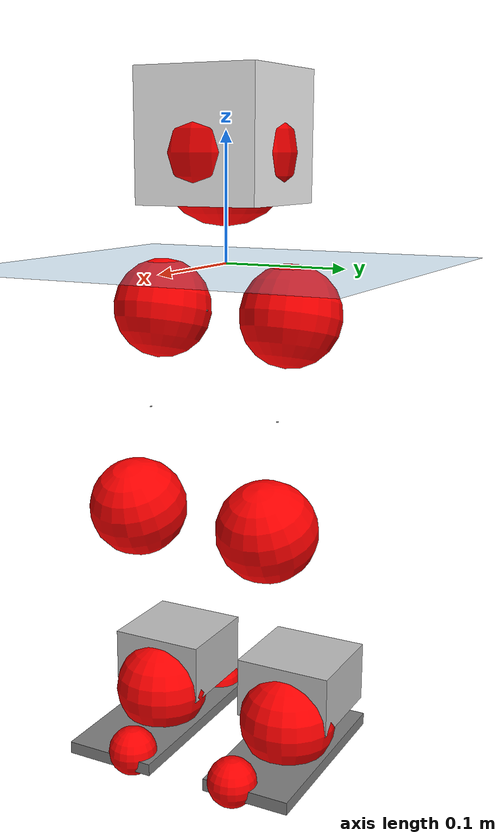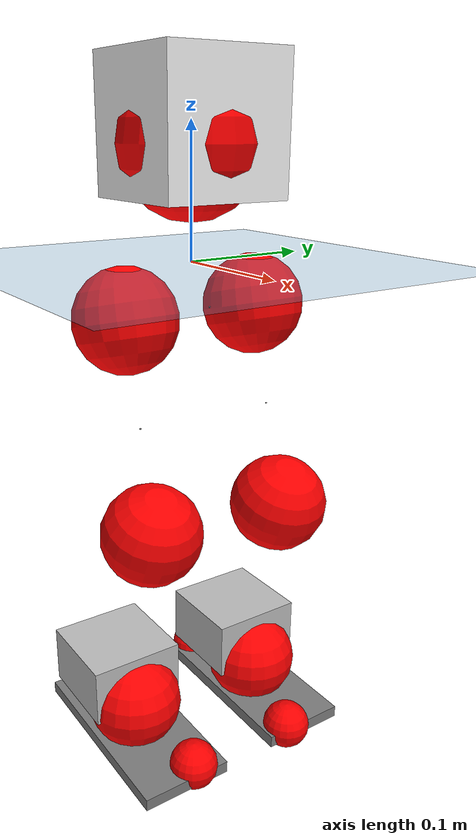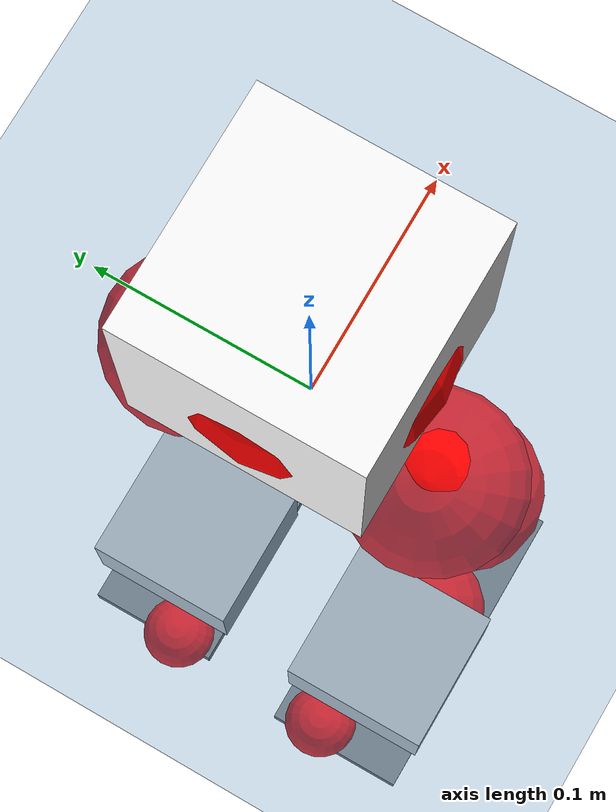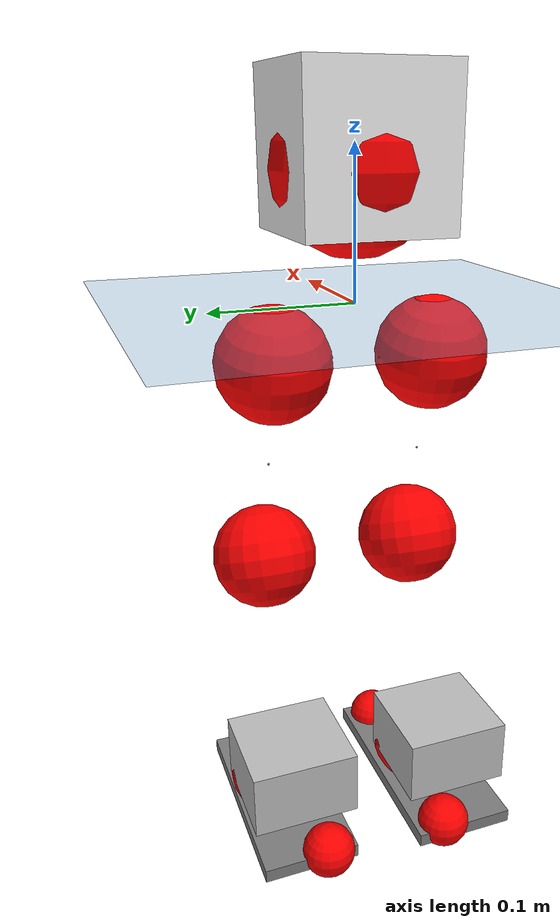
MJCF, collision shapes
<mujoco model="pi_12dof_release_v1">
  <compiler angle="radian" assetdir="assets" balanceinertia="true" inertiafromgeom="false"/>

  <option timestep="0.005" density="1.2" viscosity="2e-05"/>

  <size nkey="1"/>

  <visual>
    <quality shadowsize="8192"/>
    <map shadowclip="0.5"/>
  </visual>

  <default>
    <default class="/">
      <joint armature="0.01" damping="0.01" frictionloss="0.01"/>
      <geom contype="0" conaffinity="0" group="1" solref="-1000 -80"/>
      <site size="0.01 0.005 0.005" group="5"/>
      <general forcelimited="true" biastype="affine" gainprm="20" biasprm="0 -20 -0.5"/>
      <default class="foot">
        <geom size="0.0845 0.036 0.005" type="box" condim="6" group="4" priority="1" friction="0.9 0.2 0.2" solimp="0.015 1 0.005"/>
      </default>
      <default class="reward_collision_sphere">
        <geom group="5" rgba="1 0 0 1"/>
      </default>
    </default>
  </default>

  <asset>
    <texture type="skybox" colorspace="auto" name="//unnamed_texture_0" builtin="gradient" rgb1="0.95 0.95 0.95" rgb2="0.95 0.95 0.95" width="100" height="600"/>
    <texture type="2d" colorspace="auto" name="texplane" builtin="checker" rgb1="0.345 0.575 0.748" rgb2="0.345 0.575 0.748" markrgb="1 1 1" width="512" height="512"/>
    <material name="MatPlane" class="/" texture="texplane" texuniform="true" texrepeat="2 2" specular="0.9"/>
    <mesh name="baselink_1" class="/" file="baselink_1.STL"/>
    <mesh name="r_hip_pitch_link" class="/" file="r_hip_pitch_link.STL"/>
    <mesh name="r_hip_roll_link" class="/" file="r_hip_roll_link.STL"/>
    <mesh name="r_thigh_link" class="/" file="r_thigh_link.STL"/>
    <mesh name="r_calf_link" class="/" file="r_calf_link.STL"/>
    <mesh name="r_ankle_pitch_link" class="/" file="r_ankle_pitch_link.STL"/>
    <mesh name="r_ankle_roll_link" class="/" file="r_ankle_roll_link.STL"/>
    <mesh name="l_hip_pitch_link" class="/" file="l_hip_pitch_link.STL"/>
    <mesh name="l_hip_roll_link" class="/" file="l_hip_roll_link.STL"/>
    <mesh name="l_thigh_link" class="/" file="l_thigh_link.STL"/>
    <mesh name="l_calf_link" class="/" file="l_calf_link.STL"/>
    <mesh name="l_ankle_pitch_link" class="/" file="l_ankle_pitch_link.STL"/>
    <mesh name="l_ankle_roll_link" class="/" file="l_ankle_roll_link.STL"/>
  </asset>

  <worldbody>
    <geom name="floor" class="/" size="100 100 0.125" type="plane" group="0" material="MatPlane"/>
    <light name="toplight_shadow" class="/" pos="0 0 5" dir="0.0990148 0.0990148 -0.990148" type="directional" ambient="0.04 0.04 0.04" diffuse="0.55 0.55 0.55" specular="0.12 0.12 0.12"/>
    <light name="toplight_fill" class="/" pos="0 0 5" dir="0.0990148 0.0990148 -0.990148" type="directional" castshadow="false" ambient="0.04 0.04 0.04" diffuse="0.3 0.3 0.3" specular="0.08 0.08 0.08"/>
    <body name="trunk" pos="0.000317009 -0.000417562 0.00100175" quat="1 -1.97628e-05 1.28574e-05 0.00022359">
      <inertial pos="0.0028579 -0.00285216 0.0484783" quat="0.696069 0.00884178 0.0101743 0.717848" mass="2.13049" diaginertia="0.0149048 0.00173 0.00936886"/>
      <joint name="//unnamed_joint_0" type="free"/>
      <geom name="//unnamed_geom_1" class="/" type="mesh" density="0" rgba="1 1 1 1" mesh="baselink_1"/>
      <geom name="//unnamed_geom_2" class="/" size="0.0500479 0.0500479 0.0500479" pos="0 0 0.0943271" type="box" rgba="1 1 1 1"/>
      <geom name="//unnamed_geom_3" class="reward_collision_sphere" size="0.0550527" pos="0 0 0.0825362"/>
      <site name="imu" class="/" pos="-0.00253994 0.00215512 0.00212012" size="0.0100096"/>
      <camera name="track" class="/" pos="0 -1.44615 0" quat="0.707107 0.707107 0 0" mode="trackcom"/>
      <camera name="ego_camera" class="/" pos="0.0825532 0 0.212236" quat="-0.5 -0.5 0.5 0.5"/>
      <body name="r_hip_pitch_link" pos="-0.00139053 -0.0171557 -0.0390675" quat="0.99225 -3.55079e-05 -0.124257 -4.03796e-05">
        <inertial pos="0.00137136 -0.0424268 0.000856945" quat="-0.0281383 0.705118 -0.036884 0.707571" mass="0.368422" diaginertia="0.000173306 1.9454e-05 0.000187501"/>
        <joint name="r_hip_pitch_joint" class="/" pos="0 0 0" axis="-0.00592795 -0.999975 0.003803" range="-1.74392 1.24374" armature="0.00977321" damping="0.0239459" frictionloss="0.0110816"/>
        <geom name="//unnamed_geom_4" class="/" type="mesh" density="0" rgba="0.75294 0.75294 0.75294 1" mesh="r_hip_pitch_link"/>
        <geom name="//unnamed_geom_5" class="/" size="0.000500479 0.000500479 0.000500479" type="box" rgba="0.75294 0.75294 0.75294 1"/>
        <body name="r_hip_roll_link" pos="0.0013329 -0.0400588 -0.000439111" quat="0.999999 -6.82886e-05 0.000180158 0.00115639">
          <inertial pos="-0.00135127 0.00194205 -0.0707205" quat="0.708964 -0.0792931 -0.080036 0.696188" mass="0.386091" diaginertia="0.00052568 5.63656e-05 0.000291234"/>
          <joint name="r_hip_roll_joint" class="/" pos="0 0 0" axis="-0.999997 -0.00179555 -0.00173003" range="-0.11648 0.504516" armature="0.0106441" damping="0.0161761" frictionloss="0.00974839"/>
          <geom name="//unnamed_geom_6" class="/" type="mesh" density="0" rgba="0.75294 0.75294 0.75294 1" mesh="r_hip_roll_link"/>
          <geom name="//unnamed_geom_7" class="/" size="0.000500479 0.000500479 0.000500479" type="box" rgba="0.75294 0.75294 0.75294 1"/>
          <geom name="//unnamed_geom_8" class="reward_collision_sphere" size="0.0400383"/>
          <body name="r_thigh_link" pos="-0.000185372 -0.000627263 -0.0805868" quat="1 -9.48721e-05 0.000146802 2.58493e-05">
            <inertial pos="-0.00133586 0.000293028 -0.0574286" quat="0.738916 0.673782 -0.000738199 0.00448797" mass="0.111333" diaginertia="0.000201118 1.91602e-05 0.000130878"/>
            <joint name="r_thigh_joint" class="/" pos="0 0 0" axis="0.000978787 0.00577001 -0.999983" range="-0.347599 0.547286" armature="0.0107976" damping="0" frictionloss="0.0111394"/>
            <geom name="//unnamed_geom_9" class="/" type="mesh" density="0" rgba="0.75294 0.75294 0.75294 1" mesh="r_thigh_link"/>
            <geom name="//unnamed_geom_10" class="/" size="0.000500479 0.000500479 0.000500479" type="box" rgba="0.75294 0.75294 0.75294 1"/>
            <body name="r_calf_link" pos="-0.00249611 -0.00225805 -0.0821897" quat="0.947612 3.74264e-05 0.319424 0.000216311">
              <inertial pos="0.00010946 -0.00178718 -0.0814471" quat="0.999918 0.00293893 0.000332003 0.0124654" mass="0.823671" diaginertia="0.00562238 0.00069135 0.000391374"/>
              <joint name="r_calf_joint" class="/" pos="0 0 0" axis="0.0131895 -0.999904 0.00419891" stiffness="0.0024053" range="-1.64098 0.649612" armature="0.0100752" damping="0.0121264" frictionloss="0.0110236"/>
              <geom name="//unnamed_geom_11" class="/" type="mesh" density="0" rgba="0.75294 0.75294 0.75294 1" mesh="r_calf_link"/>
              <geom name="//unnamed_geom_12" class="/" size="0.000500479 0.000500479 0.000500479" type="box" rgba="0.75294 0.75294 0.75294 1"/>
              <geom name="//unnamed_geom_13" class="reward_collision_sphere" size="0.0400383"/>
              <body name="r_ankle_pitch_link" pos="0.00126409 -0.00114213 -0.167074" quat="0.98007 -9.45144e-06 -0.198651 -1.78271e-05">
                <inertial pos="0.00472614 0.00250798 0.00186663" quat="0.005853 0.70799 -0.00566172 0.706176" mass="0.17401" diaginertia="0.00049356 4.37597e-05 0.000272568"/>
                <joint name="r_ankle_pitch_joint" class="/" pos="0 0 0" axis="-0.000208117 -0.999989 0.00470722" range="-1.30739 0.459066" armature="0.0107344" damping="0.0123514" frictionloss="0.0109483"/>
                <geom name="//unnamed_geom_14" class="/" type="mesh" density="0" rgba="0.75294 0.75294 0.75294 1" mesh="r_ankle_pitch_link"/>
                <geom name="//unnamed_geom_15" class="/" size="0.0390374 0.0400383 0.025024" type="box" rgba="0.75294 0.75294 0.75294 1"/>
                <body name="r_ankle_roll_link" pos="0.0853063 0.000812566 0.00207927" quat="1 7.07159e-05 0.00011802 -0.000196663">
                  <inertial pos="-0.0264625 0.000426494 -0.0166496" quat="0.559922 0.428258 0.437887 0.557976" mass="0.536299" diaginertia="0.00190677 0.000211743 0.000664921"/>
                  <joint name="r_ankle_roll_joint" class="/" pos="0 0 0" axis="-0.999933 0.00917318 -0.00712645" stiffness="0.0013243" range="-0.102095 0.177844" armature="0.00971039" damping="0.00963184" frictionloss="0.00950348"/>
                  <geom name="//unnamed_geom_16" class="/" type="mesh" density="0" rgba="0.75294 0.75294 0.75294 1" mesh="r_ankle_roll_link"/>
                  <geom name="//unnamed_geom_17" class="/" type="mesh" rgba="0.75294 0.75294 0.75294 1" mesh="r_ankle_roll_link"/>
                  <geom name="right_foot" class="foot" size="0.0863325 0.0384503 0.00501351" pos="-0.0561362 0 -0.0518799"/>
                  <geom name="//unnamed_geom_19" class="reward_collision_sphere" size="0.0400383" pos="-0.0550355 0 -0.0235818"/>
                  <geom name="//unnamed_geom_20" class="reward_collision_sphere" size="0.0200192" pos="0.0165106 0.0144615 -0.0471635"/>
                  <geom name="//unnamed_geom_21" class="reward_collision_sphere" size="0.0200192" pos="-0.132085 0.0144615 -0.0471635"/>
                  <site name="right_foot" class="foot" pos="-0.0561362 0 -0.0518799" size="0.0100096"/>
                </body>
              </body>
            </body>
          </body>
        </body>
      </body>
      <body name="l_hip_pitch_link" pos="0.00153114 0.0163393 -0.036906" quat="0.992193 0.000229884 -0.124712 -0.000243106">
        <inertial pos="0.00054045 0.0397296 -7.82498e-05" quat="-0.0380574 0.704812 0.0266034 0.707873" mass="0.383527" diaginertia="0.000210826 2.11903e-05 0.00023173"/>
        <joint name="l_hip_pitch_joint" class="/" pos="0 0 0" axis="0.0020317 0.999993 -0.00324625" stiffness="0.00338935" range="-1.23867 1.78771" armature="0.00971955" damping="0.0155718" frictionloss="0.0101514"/>
        <geom name="//unnamed_geom_22" class="/" type="mesh" density="0" rgba="0.75294 0.75294 0.75294 1" mesh="l_hip_pitch_link"/>
        <geom name="//unnamed_geom_23" class="/" size="0.000500479 0.000500479 0.000500479" type="box" rgba="0.75294 0.75294 0.75294 1"/>
        <body name="l_hip_roll_link" pos="-0.000214891 0.0412482 -0.00151222" quat="0.999999 -0.000267099 -0.00104348 0.000225391">
          <inertial pos="-0.00251452 0.00241243 -0.0727444" quat="0.698497 -0.078306 -0.0822506 0.706544" mass="0.379075" diaginertia="0.000541729 5.48335e-05 0.000300257"/>
          <joint name="l_hip_roll_joint" class="/" pos="0 0 0" axis="-1 0.000866616 -0.000361279" range="-0.49807 0.0998133" armature="0.0111987" damping="0.00689553" frictionloss="0.0101481"/>
          <geom name="//unnamed_geom_24" class="/" type="mesh" density="0" rgba="0.75294 0.75294 0.75294 1" mesh="l_hip_roll_link"/>
          <geom name="//unnamed_geom_25" class="/" size="0.000500479 0.000500479 0.000500479" type="box" rgba="0.75294 0.75294 0.75294 1"/>
          <geom name="//unnamed_geom_26" class="reward_collision_sphere" size="0.0400383"/>
          <body name="l_thigh_link" pos="0.0014964 0.000173107 -0.0811385" quat="1 0.000196852 -3.9159e-05 9.79533e-08">
            <inertial pos="1.92185e-05 -6.53436e-05 -0.0561064" quat="0.674127 0.738613 0.00140151 0.00115526" mass="0.11439" diaginertia="0.000199975 1.85026e-05 0.000130029"/>
            <joint name="l_thigh_joint" class="/" pos="0 0 0" axis="0.00156004 0.000643277 -0.999999" range="-0.619492 0.286144" armature="0.0101655" damping="0" frictionloss="0.00949516"/>
            <geom name="//unnamed_geom_27" class="/" type="mesh" density="0" rgba="0.75294 0.75294 0.75294 1" mesh="l_thigh_link"/>
            <geom name="//unnamed_geom_28" class="/" size="0.000500479 0.000500479 0.000500479" type="box" rgba="0.75294 0.75294 0.75294 1"/>
            <body name="l_calf_link" pos="-0.00238576 0.00112809 -0.0843783" quat="0.947627 0.00062898 0.319377 0.00108129">
              <inertial pos="0.000902042 0.00344015 -0.0811152" quat="0.999982 0.00430128 0.000701624 0.004028" mass="0.823183" diaginertia="0.00573867 0.000687996 0.000413148"/>
              <joint name="l_calf_joint" class="/" pos="0 0 0" axis="4.74889e-05 1 -0.000705357" range="-0.617231 1.67163" armature="0.0104327" damping="0.00539247" frictionloss="0.00954655"/>
              <geom name="//unnamed_geom_29" class="/" type="mesh" density="0" rgba="0.75294 0.75294 0.75294 1" mesh="l_calf_link"/>
              <geom name="//unnamed_geom_30" class="/" size="0.000500479 0.000500479 0.000500479" type="box" rgba="0.75294 0.75294 0.75294 1"/>
              <geom name="//unnamed_geom_31" class="reward_collision_sphere" size="0.0400383"/>
              <body name="l_ankle_pitch_link" pos="-0.000243778 0.00229361 -0.163774" quat="0.980006 -0.000218544 -0.198967 0.000318338">
                <inertial pos="0.00508689 -0.001733 -4.29601e-05" quat="-0.00200797 0.707229 0.00259414 0.706977" mass="0.172902" diaginertia="0.000490344 4.40147e-05 0.000269764"/>
                <joint name="l_ankle_pitch_joint" class="/" pos="0 0 0" axis="0.00247792 0.999996 0.00161798" stiffness="0.00850398" range="-0.504712 1.30557" armature="0.00911504" damping="0.016137" frictionloss="0.00995814"/>
                <geom name="//unnamed_geom_32" class="/" type="mesh" density="0" rgba="0.75294 0.75294 0.75294 1" mesh="l_ankle_pitch_link"/>
                <geom name="//unnamed_geom_33" class="/" size="0.0390374 0.0400383 0.025024" type="box" rgba="0.75294 0.75294 0.75294 1"/>
                <body name="l_ankle_roll_link" pos="0.0833294 0.00123464 -0.000483954" quat="1 2.30903e-05 9.27776e-05 0.000167331">
                  <inertial pos="-0.0268104 -4.9524e-05 -0.0171634" quat="0.559794 0.43071 0.434064 0.559204" mass="0.523109" diaginertia="0.00180798 0.000202332 0.000641639"/>
                  <joint name="l_ankle_roll_joint" class="/" pos="0 0 0" axis="-1 -0.000106797 -0.00099123" range="-0.106891 0.147299" armature="0.00997486" damping="0" frictionloss="0.0105222"/>
                  <geom name="//unnamed_geom_34" class="/" type="mesh" density="0" rgba="0.75294 0.75294 0.75294 1" mesh="l_ankle_roll_link"/>
                  <geom name="//unnamed_geom_35" class="/" type="mesh" rgba="0.75294 0.75294 0.75294 1" mesh="l_ankle_roll_link"/>
                  <geom name="left_foot" class="foot" size="0.0804319 0.0365165 0.0051472" pos="-0.0561362 0 -0.0518799"/>
                  <geom name="//unnamed_geom_37" class="reward_collision_sphere" size="0.0400383" pos="-0.0550355 0 -0.0235818"/>
                  <geom name="//unnamed_geom_38" class="reward_collision_sphere" size="0.0200192" pos="0.0165106 -0.0144615 -0.0471635"/>
                  <geom name="//unnamed_geom_39" class="reward_collision_sphere" size="0.0200192" pos="-0.132085 -0.0144615 -0.0471635"/>
                  <site name="left_foot" class="foot" pos="-0.0561362 0 -0.0518799" size="0.0100096"/>
                </body>
              </body>
            </body>
          </body>
        </body>
      </body>
    </body>
  </worldbody>

  <contact>
    <pair class="/" geom1="floor" geom2="right_foot" name="//unnamed_contact_1"/>
    <pair class="/" geom1="floor" geom2="left_foot" name="//unnamed_contact_0"/>
  </contact>

  <actuator>
    <general name="r_hip_pitch_joint" class="/" joint="r_hip_pitch_joint" forcerange="-21.7733 21.7733" gainprm="20.4187" biasprm="0 -20.4187 -0.485924"/>
    <general name="r_hip_roll_joint" class="/" joint="r_hip_roll_joint" forcerange="-22.9455 22.9455" gainprm="20.4187" biasprm="0 -20.4187 -0.485924"/>
    <general name="r_thigh_joint" class="/" joint="r_thigh_joint" forcerange="-21.1792 21.1792" gainprm="20.4187" biasprm="0 -20.4187 -0.485924"/>
    <general name="r_calf_joint" class="/" joint="r_calf_joint" forcerange="-21.3722 21.3722" gainprm="20.4187" biasprm="0 -20.4187 -0.485924"/>
    <general name="r_ankle_pitch_joint" class="/" joint="r_ankle_pitch_joint" forcerange="-21.0493 21.0493" gainprm="20.4187" biasprm="0 -20.4187 -0.485924"/>
    <general name="r_ankle_roll_joint" class="/" joint="r_ankle_roll_joint" forcerange="-21.8156 21.8156" gainprm="20.4187" biasprm="0 -20.4187 -0.485924"/>
    <general name="l_hip_pitch_joint" class="/" joint="l_hip_pitch_joint" forcerange="-20.4788 20.4788" gainprm="20.4187" biasprm="0 -20.4187 -0.485924"/>
    <general name="l_hip_roll_joint" class="/" joint="l_hip_roll_joint" forcerange="-20.9712 20.9712" gainprm="20.4187" biasprm="0 -20.4187 -0.485924"/>
    <general name="l_thigh_joint" class="/" joint="l_thigh_joint" forcerange="-21.2082 21.2082" gainprm="20.4187" biasprm="0 -20.4187 -0.485924"/>
    <general name="l_calf_joint" class="/" joint="l_calf_joint" forcerange="-21.4475 21.4475" gainprm="20.4187" biasprm="0 -20.4187 -0.485924"/>
    <general name="l_ankle_pitch_joint" class="/" joint="l_ankle_pitch_joint" forcerange="-20.9003 20.9003" gainprm="20.4187" biasprm="0 -20.4187 -0.485924"/>
    <general name="l_ankle_roll_joint" class="/" joint="l_ankle_roll_joint" forcerange="-20.3095 20.3095" gainprm="20.4187" biasprm="0 -20.4187 -0.485924"/>
  </actuator>

  <sensor>
    <gyro site="imu" name="imu_angular_velocity"/>
    <velocimeter site="imu" name="imu_linear_velocity"/>
    <framelinvel objtype="site" objname="left_foot" name="left_foot_global_linear_velocity"/>
    <framelinvel objtype="site" objname="right_foot" name="right_foot_global_linear_velocity"/>
  </sensor>

  <keyframe>
    <key name="home" qpos="0 0 0.291 1 0 0 0 0.4 0 0 -0.8 0.4 0 -0.4 0 0 0.8 -0.4 0"/>
  </keyframe>
</mujoco>
